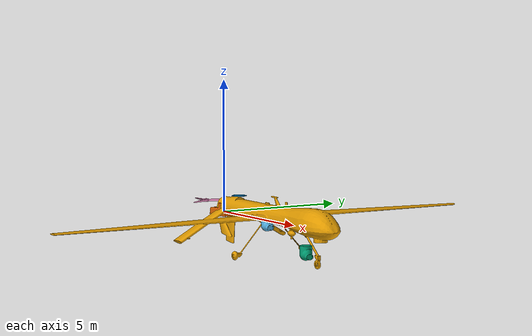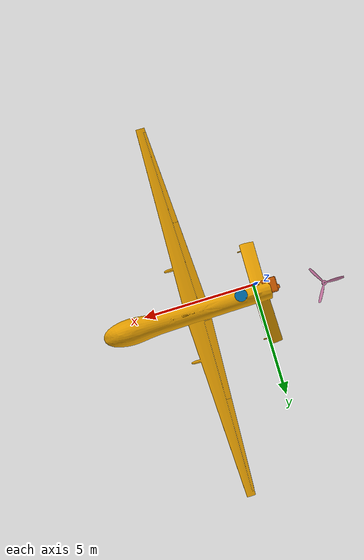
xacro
<?xml version="1.0"?>
<robot xmlns:xacro="http://ros.org/wiki/xacro" name="aetheris_prime">
<xacro:property name="mainframe_mass" value="2.5"/>
<xacro:property name="gimbal_base_mass" value="0.3"/>
<xacro:property name="gimbal_camera_mass" value="0.2"/>
<xacro:property name="lidar_mass" value="0.4"/>
<xacro:property name="gnss_module_mass" value=""/>
<xacro:property name="hyperspectral_sensor_mass" value=""/>
<xacro:property name="propeller_mass" value=""/>
<xacro:property name="scale" value="1.0"/>

  <!-- Mainframe -->
  <link name="base_link">
    <inertial>
      <origin xyz="0 0 0" rpy="0 0 0"/>
      <mass value="${mainframe_mass}"/>
      <inertia ixx="0.05" iyy="0.06" izz="0.07" ixy="0.0" ixz="0.0" iyz="0.0"/>
    </inertial>
    <visual>
      <geometry>
        <mesh filename="package://aetheris_description_pkg/visual/prime_visualSTL/Prime_Mainframe.stl"  scale="${scale} ${scale} ${scale}"/>
      </geometry>
    </visual>
    <collision>
      <geometry>
        <mesh filename="package://aetheris_description_pkg/collision/prime_collisionSTL/Prime_Mainframe_collision.stl"  scale="${scale} ${scale} ${scale}"/>
      </geometry>
    </collision>
  </link>

  <!-- Gimbal Base -->
  <link name="gimbal_link">
    <inertial>
      <origin xyz="0 0 0" rpy="0 0 0"/>
      <mass value="gimbal_base_mass"/>
      <inertia ixx="0.002" iyy="0.003" izz="0.004" ixy="0.0" ixz="0.0" iyz="0.0"/>
    </inertial>
    <visual>
      <geometry>
        <mesh filename="package://aetheris_description_pkg/visual/prime_visualSTL/Gimbal_Camera.stl"  scale="${scale} ${scale} ${scale}"/>
      </geometry>
    </visual>
    <collision>
      <geometry>
        <mesh filename="package://aetheris_description_pkg/collision/prime_collisionSTL/Gimbal_Camera_collision.stl"  scale="${scale} ${scale} ${scale}"/>
      </geometry>
    </collision>
  </link>

  <joint name="base_to_gimbal" type="fixed">
    <parent link="base_link"/>
    <child link="gimbal_link"/>
    <origin xyz="2.59761 0 -0.45744" rpy="0 0 0"/>
  </joint>

  <!-- Gimbal Camera -->
  <link name="gimbal_camera">
    <inertial>
      <origin xyz="0 0 0" rpy="0 0 0"/>
      <mass value="gimbal_camera_mass"/>
      <inertia ixx="0.001" iyy="0.001" izz="0.002" ixy="0.0" ixz="0.0" iyz="0.0"/>
    </inertial>
    <visual>
      <geometry>
        <mesh filename="package://aetheris_description_pkg/visual/prime_visualSTL/Gimbal_Camera.stl"  scale="${scale} ${scale} ${scale}"/>
      </geometry>
    </visual>
    <collision>
      <geometry>
        <mesh filename="package://aetheris_description_pkg/collision/prime_collisionSTL/Gimbal_Camera_collision.stl"  scale="${scale} ${scale} ${scale}"/>
      </geometry>
    </collision>
  </link>

  <joint name="gimbal_to_camera" type="fixed">
    <parent link="gimbal_link"/>
    <child link="gimbal_camera"/>
    <origin xyz="2.61136 0.00004 -0.71337" rpy="0 0 0"/>
  </joint>

  <!-- LiDAR -->
  <link name="lidar_link">
    <inertial>
      <origin xyz="0 0 0" rpy="0 0 0"/>
      <mass value="lidar_mass"/>
      <inertia ixx="0.002" iyy="0.002" izz="0.003" ixy="0.0" ixz="0.0" iyz="0.0"/>
    </inertial>
    <visual>
      <geometry>
        <mesh filename="package://aetheris_description_pkg/visual/prime_visualSTL/LiDAR.stl"  scale="${scale} ${scale} ${scale}"/>
      </geometry>
    </visual>
    <collision>
      <geometry>
        <mesh filename="package://aetheris_description_pkg/collision/prime_collisionSTL/LiDAR_collision.stl"  scale="${scale} ${scale} ${scale}"/>
      </geometry>
    </collision>
  </link>

  <joint name="base_to_lidar" type="fixed">
    <parent link="base_link"/>
    <child link="lidar_link"/>
    <origin xyz="-0.13862 -0.00176 -0.1943" rpy="0 0 0"/>
  </joint>

  <!-- GNSS Module -->
  <link name="gnss_link">
    <inertial>
      <origin xyz="0 0 0" rpy="0 0 0"/>
      <mass value="gnss_module_mass"/>
      <inertia ixx="0.0005" iyy="0.0005" izz="0.001" ixy="0.0" ixz="0.0" iyz="0.0"/>
    </inertial>
    <visual>
      <geometry>
        <mesh filename="package://aetheris_description_pkg/visual/prime_visualSTL/GNSS_Module.stl"  scale="${scale} ${scale} ${scale}"/>
      </geometry>
    </visual>
    <collision>
      <geometry>
        <mesh filename="package://aetheris_description_pkg/collision/prime_collisionSTL/GNSS_Module_collision.stl"  scale="${scale} ${scale} ${scale}"/>
      </geometry>
    </collision>
  </link>

  <joint name="base_to_gnss" type="fixed">
    <parent link="base_link"/>
    <child link="gnss_link"/>
    <origin xyz="0.38207 0 0.6371" rpy="0 0 0"/>
  </joint>

  <!-- Hyperspectral Sensor -->
  <link name="hyperspectral_link">
    <inertial>
      <origin xyz="0 0 0" rpy="0 0 0"/>
      <mass value="hyperspectral_sensor_mass"/>
      <inertia ixx="0.003" iyy="0.003" izz="0.004" ixy="0.0" ixz="0.0" iyz="0.0"/>
    </inertial>
    <visual>
      <geometry>
        <mesh filename="package://aetheris_description_pkg/visual/prime_visualSTL/Hyperspectral_Sensor.stl"  scale="${scale} ${scale} ${scale}"/>
      </geometry>
    </visual>
    <collision>
      <geometry>
        <mesh filename="package://aetheris_description_pkg/collision/prime_collisionSTL/Hyperspectral_Sensor_collision.stl"  scale="${scale} ${scale} ${scale}"/>
      </geometry>
    </collision>
  </link>

  <joint name="base_to_hyperspectral" type="fixed">
    <parent link="base_link"/>
    <child link="hyperspectral_link"/>
    <origin xyz="-1.11855 -0.11134 -0.1863" rpy="0 0 0"/>
  </joint>

  <!-- Propeller -->
  <link name="propeller_link">
    <inertial>
      <origin xyz="0 0 0" rpy="0 0 0"/>
      <mass value="propeller_mass"/>
      <inertia ixx="0.0001" iyy="0.0001" izz="0.0002" ixy="0.0" ixz="0.0" iyz="0.0"/>
    </inertial>
    <visual>
      <geometry>
        <mesh filename="package://aetheris_description_pkg/visual/prime_visualSTL/Propeller.stl"  scale="${scale} ${scale} ${scale}"/>
      </geometry>
    </visual>
    <collision>
      <geometry>
        <mesh filename="package://aetheris_description_pkg/collision/prime_collisionSTL/Propeller_collision.stl" scale="${scale} ${scale} ${scale}"/>
      </geometry>
    </collision>
  </link>

  <joint name="base_to_propeller" type="fixed">
    <parent link="base_link"/>
    <child link="propeller_link"/>
    <origin xyz="-3.91319 0 0.03031" rpy="0 0 0"/>
  </joint>

</robot>
